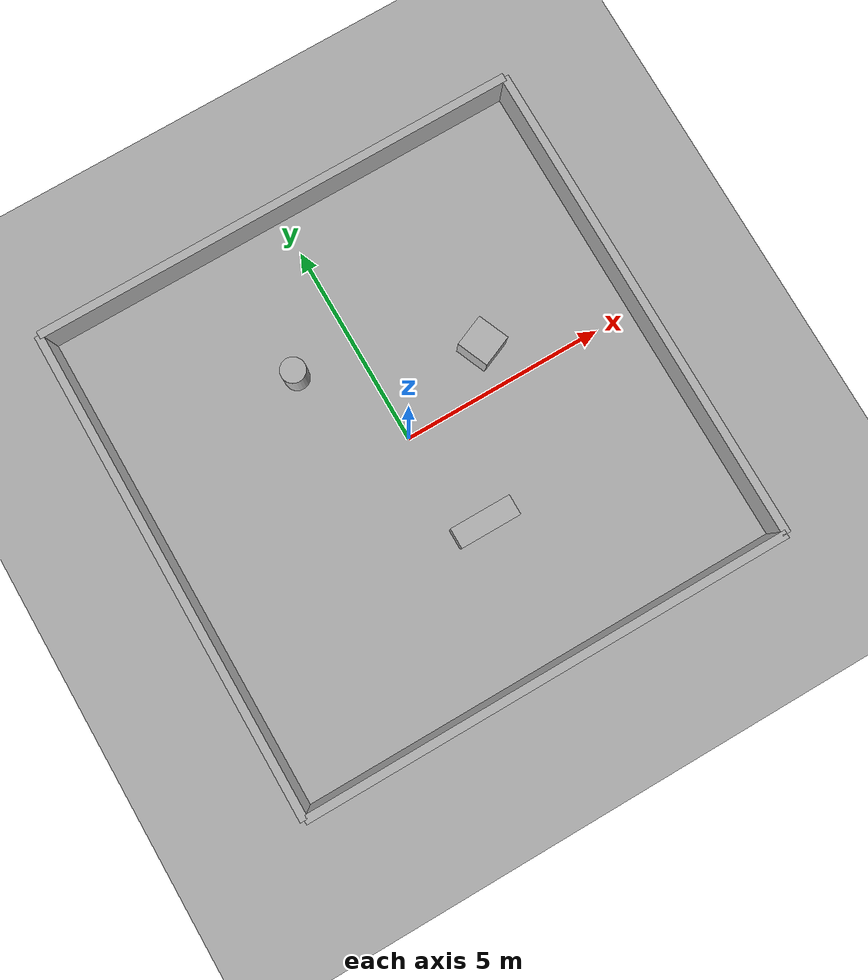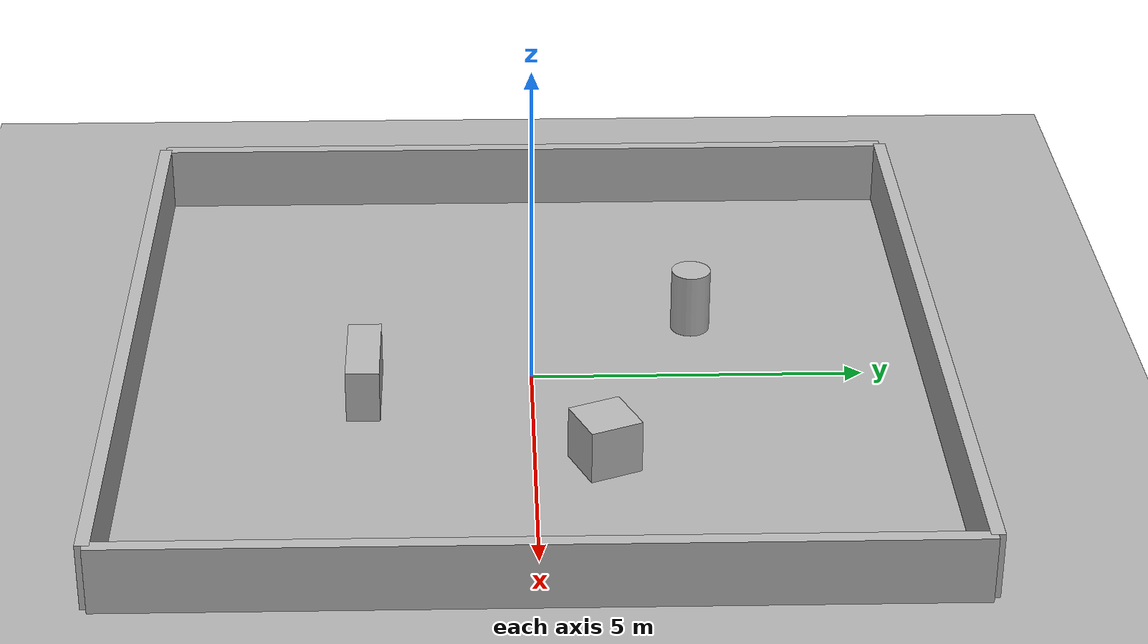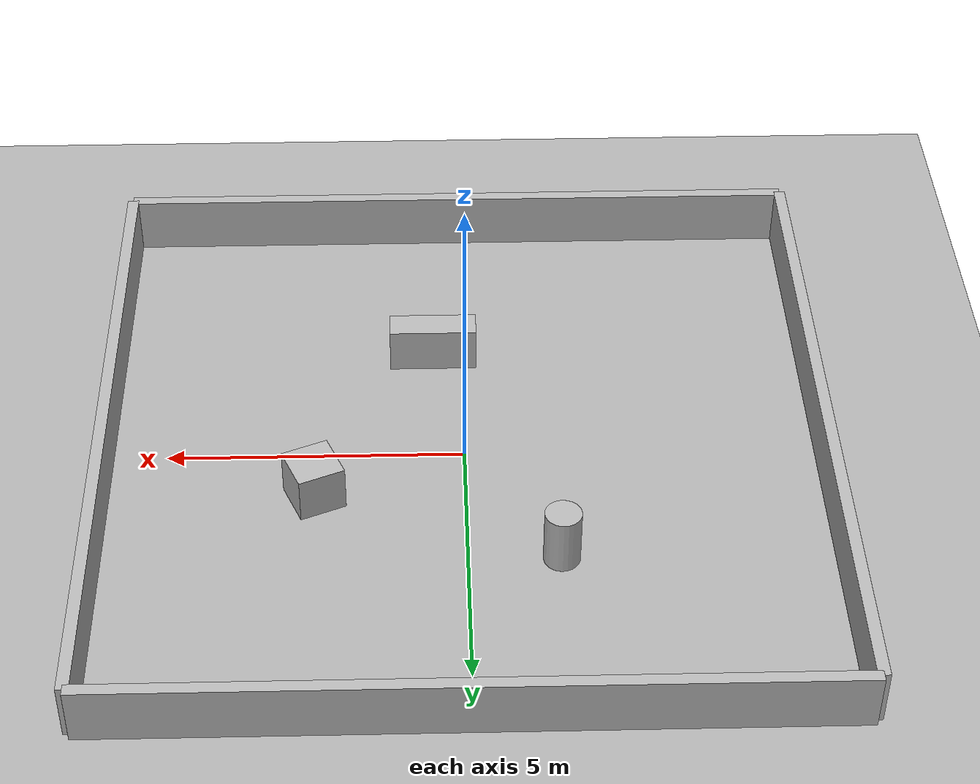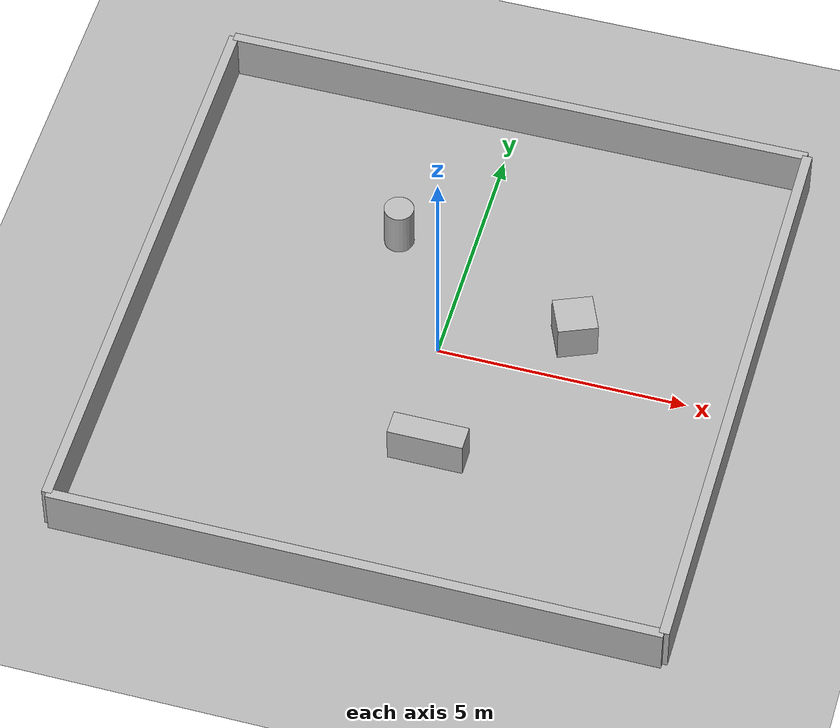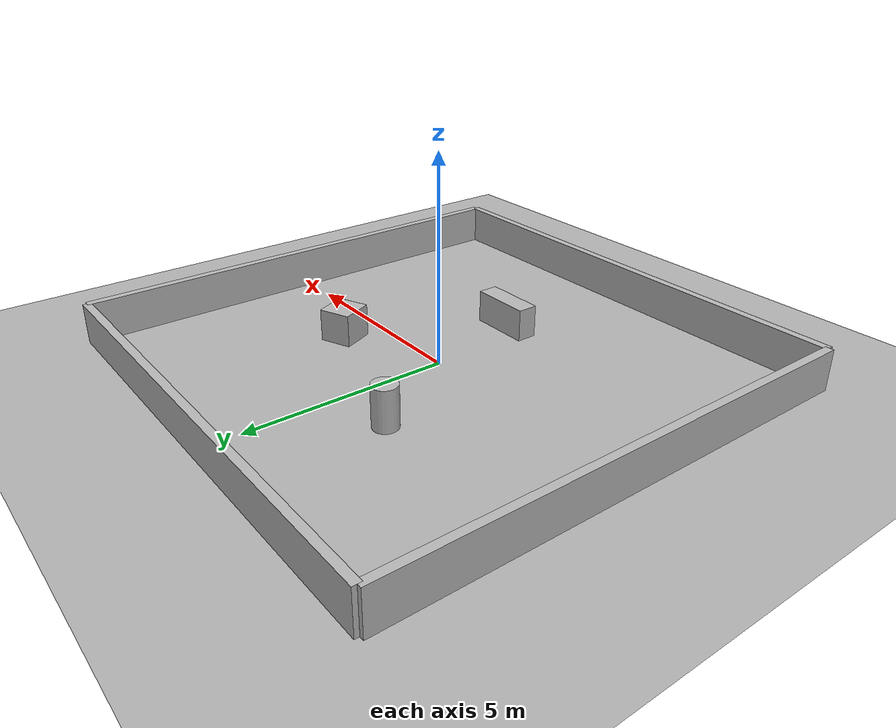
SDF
<?xml version="1.0"?>
<sdf version="1.8">
  <world name="patrol_room">
    <physics name="p" type="dart">
      <max_step_size>0.002</max_step_size>
      <real_time_factor>1.0</real_time_factor>
    </physics>
    <!-- Harmonic names. For Fortress run:  sed -i 's/gz-sim-/ignition-gazebo-/;s/gz::sim::/ignition::gazebo::/' -->
    <plugin filename="gz-sim-physics-system" name="gz::sim::systems::Physics"/>
    <plugin filename="gz-sim-user-commands-system" name="gz::sim::systems::UserCommands"/>
    <plugin filename="gz-sim-scene-broadcaster-system" name="gz::sim::systems::SceneBroadcaster"/>
    <plugin filename="gz-sim-imu-system" name="gz::sim::systems::Imu"/>
    <plugin filename="gz-sim-sensors-system" name="gz::sim::systems::Sensors">
      <render_engine>ogre2</render_engine>
    </plugin>
    <light type="directional" name="sun">
      <pose>0 0 10 0 0 0</pose><direction>-0.5 0.1 -0.9</direction>
      <diffuse>0.9 0.9 0.9 1</diffuse><cast_shadows>true</cast_shadows>
    </light>

    <model name="ground"><static>true</static><link name="l">
      <collision name="c"><geometry><plane><normal>0 0 1</normal><size>40 40</size></plane></geometry>
        <surface><friction><ode><mu>1.0</mu><mu2>1.0</mu2></ode></friction></surface></collision>
      <visual name="v"><geometry><plane><normal>0 0 1</normal><size>40 40</size></plane></geometry>
        <material><ambient>0.7 0.7 0.7 1</ambient><diffuse>0.7 0.7 0.7 1</diffuse></material></visual>
    </link></model>

    <!-- 12 x 12 m room: four walls -->
    <model name="walls"><static>true</static>
      <link name="n"><pose>0 6 0.5 0 0 0</pose><collision name="c"><geometry><box><size>12 0.2 1</size></box></geometry></collision><visual name="v"><geometry><box><size>12 0.2 1</size></box></geometry></visual></link>
      <link name="s"><pose>0 -6 0.5 0 0 0</pose><collision name="c"><geometry><box><size>12 0.2 1</size></box></geometry></collision><visual name="v"><geometry><box><size>12 0.2 1</size></box></geometry></visual></link>
      <link name="e"><pose>6 0 0.5 0 0 0</pose><collision name="c"><geometry><box><size>0.2 12 1</size></box></geometry></collision><visual name="v"><geometry><box><size>0.2 12 1</size></box></geometry></visual></link>
      <link name="w"><pose>-6 0 0.5 0 0 0</pose><collision name="c"><geometry><box><size>0.2 12 1</size></box></geometry></collision><visual name="v"><geometry><box><size>0.2 12 1</size></box></geometry></visual></link>
    </model>

    <!-- obstacles to test avoidance (tall enough to be seen by the lidar) -->
    <model name="box1"><static>true</static><pose>2.5 1.0 0.4 0 0 0.4</pose><link name="l">
      <collision name="c"><geometry><box><size>0.8 0.8 0.8</size></box></geometry></collision>
      <visual name="v"><geometry><box><size>0.8 0.8 0.8</size></box></geometry></visual></link></model>
    <model name="pillar1"><static>true</static><pose>-1.5 2.5 0.5 0 0 0</pose><link name="l">
      <collision name="c"><geometry><cylinder><radius>0.3</radius><length>1.0</length></cylinder></geometry></collision>
      <visual name="v"><geometry><cylinder><radius>0.3</radius><length>1.0</length></cylinder></geometry></visual></link></model>
    <model name="box2"><static>true</static><pose>0.5 -2.5 0.4 0 0 0</pose><link name="l">
      <collision name="c"><geometry><box><size>1.5 0.5 0.8</size></box></geometry></collision>
      <visual name="v"><geometry><box><size>1.5 0.5 0.8</size></box></geometry></visual></link></model>
  </world>
</sdf>
